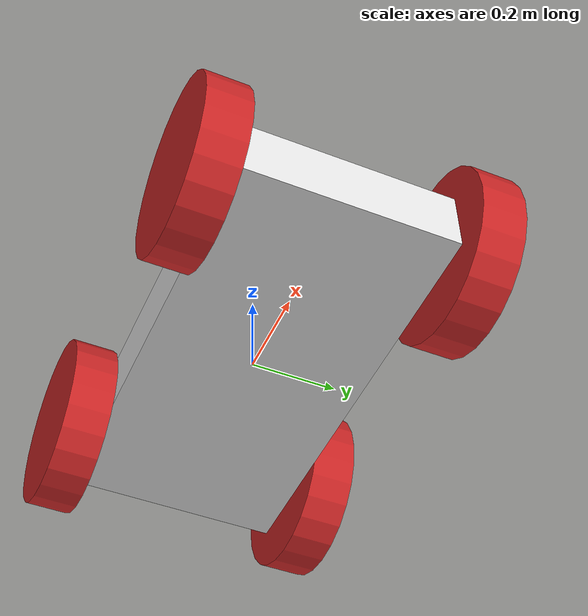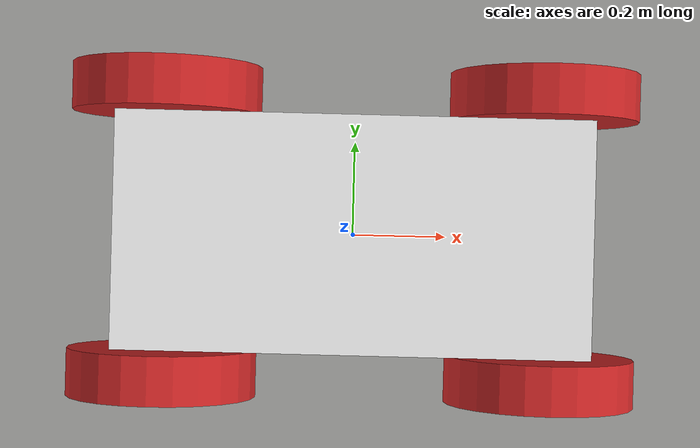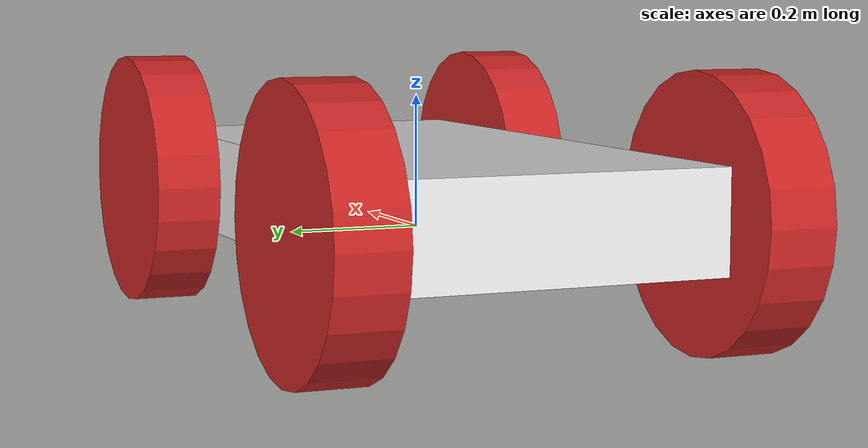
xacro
<?xml version='1.0'?>
<robot name="lols" xmlns:xacro="http://www.ros.org/wiki/xacro">

  <xacro:property name="wheel_radius" value="0.2"/>
  <xacro:property name="wheel_thickness" value="0.1" />
  <xacro:property name="wheel_mass" value="0.2" />
  <xacro:property name="chassis_length" value="1" />
  <xacro:property name="chassis_breadth" value="0.5" />
  <xacro:property name="chassis_height" value="0.15" />
  <xacro:property name="chassis_mass" value="5" />

  <xacro:include filename="$(find ohno)/urdf/materials.xacro"/>
  <xacro:include filename="$(find ohno)/urdf/wheel.xacro"/>
  <xacro:include filename="$(find ohno)/urdf/robo.gazebo"/>

  <!-- Base Link -->
  <link name="base_link">
    <pose>0 0 3 0 0 0</pose>

    <visual>
      <material name="white"/>
      <origin xyz="0 0 0.05" rpy="0 0 0" />
      <geometry>
        <box size="${chassis_length} ${chassis_breadth} ${chassis_height}"/>
      </geometry>
    </visual>
    <!-- Base collision, mass and inertia -->

    <collision>
      <origin xyz="0 0 0.05" rpy="0 0 0"/>
      <geometry>
        <box size="${chassis_length} ${chassis_breadth} ${chassis_height}"/>
      </geometry>
    </collision>

    <inertial>
      <mass value="${chassis_mass}"/>
      <inertia ixx="0.13" ixy="0.0" ixz="0.0" iyy="0.21" iyz="0.0" izz="0.13"/>
    </inertial>
  </link>

  <xacro:define_wheel name_a="front_right" name_b="front_right_joint" rad="${wheel_radius}" thicc="${wheel_thickness}" origin_xyz="0.4 -0.3 0.05"/>
  <xacro:define_wheel name_a="front_left" name_b="front_left_joint" rad="${wheel_radius}" thicc="${wheel_thickness}" origin_xyz="0.4 0.3 0.05"/>
  <xacro:define_wheel name_a="back_right" name_b="back_right_joint" rad="${wheel_radius}" thicc="${wheel_thickness}" origin_xyz="-0.4 -0.3 0.05"/>
  <xacro:define_wheel name_a="back_left" name_b="back_left_joint" rad="${wheel_radius}" thicc="${wheel_thickness}" origin_xyz="-0.4 0.3 0.05"/>

</robot>

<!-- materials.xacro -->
<gazebo reference="link_chassis">
    <material>Gazebo/Yellow</material>
  </gazebo>
  <gazebo reference="link_front_left_wheel">
    <material>Gazebo/Blue</material>
  </gazebo>
  <gazebo reference="link_front_right_wheel">
    <material>Gazebo/Blue</material>
  </gazebo>
  <gazebo reference="link_back_left_wheel">
    <material>Gazebo/Red</material>
  </gazebo>
  <gazebo reference="link_back_right_wheel">
    <material>Gazebo/Red</material>
  </gazebo>

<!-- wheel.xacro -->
<robot name="lols"  xmlns:xacro="http://www.ros.org/wiki/xacro">
    <xacro:macro name='define_wheel' params='name_a name_b rad thicc origin_xyz'>
        <link name="${name_a}">
            <inertial>
                <origin xyz="0 0 0" rpy="0 1.57 1.57"/>
                <mass value="0.5"/>
                <inertia ixx="0.01" ixy="0" ixz="0" iyy="0.005" iyz="0" izz="0.005"/>
            </inertial>

            <collision>
                <geometry>
                    <cylinder radius="${rad}" length="${thicc}"/>
                </geometry>
            </collision>

            <visual>
                <origin xyz="0 0 0" rpy="0 1.57 1.57"/>
                <geometry>
                    <cylinder radius="${rad}" length="${thicc}"/>
                </geometry>
                <material name="red"/>
            </visual>
        </link>
        <joint name="${name_b}" type="continuous">
            <origin xyz="${origin_xyz}" rpy="0 0 0"/>
            <parent link="base_link"/>
            <child link="${name_a}"/>
            <axis xyz="0 1 0"/>
        </joint>
    </xacro:macro>
</robot>
